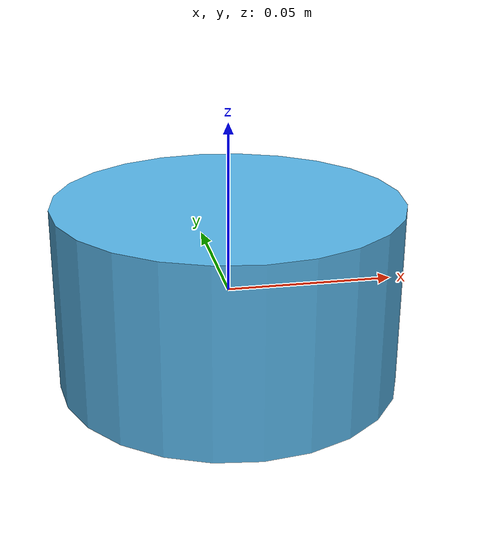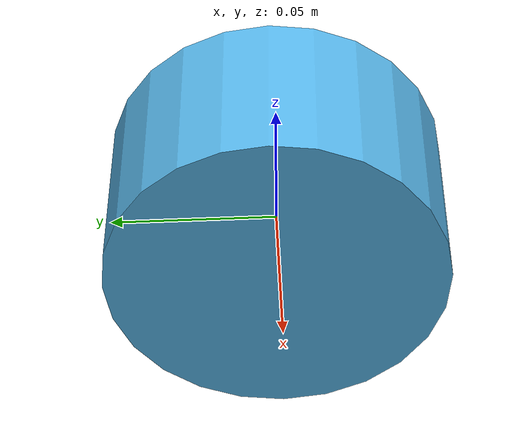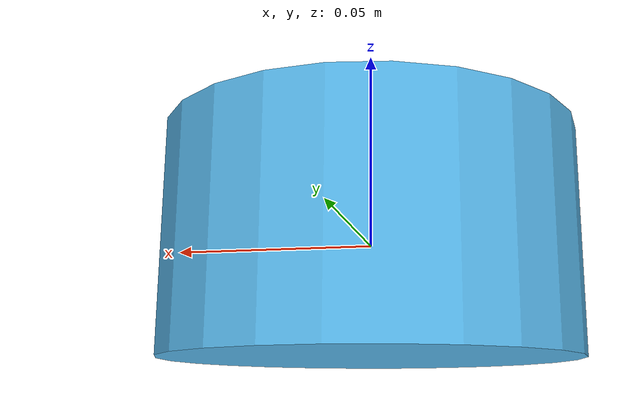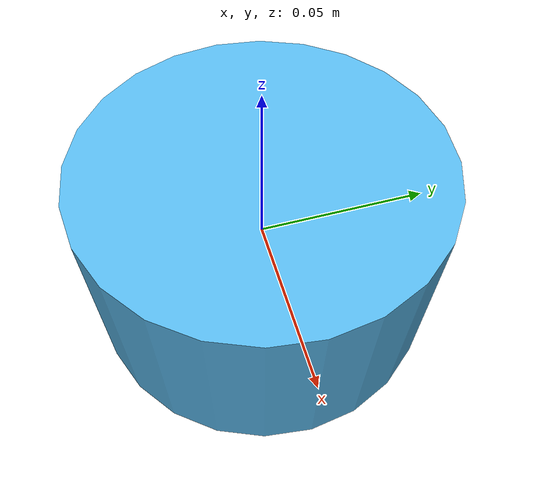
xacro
<?xml version="1.0"?>

<robot name="robot" xmlns:xacro="http://www.ros.org/wiki/xacro">
  <xacro:property name="height1" value="0.2" />
  <xacro:property name="width" value="0.2" />
 <!-- Used for fixing robot to Gazebo 'base_link' -->
  <link name="world"/>

  <joint name="fixed" type="fixed">
    <parent link="world"/>
    <child link="lidar_link"/>
  </joint>

    <link name="lidar_link">
    <inertial>
      <origin xyz="0 0 0" rpy="0 0 0"/>
      <mass value="0.125"/>
      <inertia ixx="0.001"  ixy="0"  ixz="0" iyy="0.001" iyz="0" izz="0.001" />
    </inertial>

    <collision>
      <origin xyz="0 0 0" rpy="0 0 0"/>
      <geometry>
         <cylinder radius="0.0508" length="0.055"/>
      </geometry>
    </collision>

    <visual>
      <origin xyz="0 0 0" rpy="0 0 0"/>
      <geometry>
         <cylinder radius="0.0508" length="0.055"/>
      </geometry>
    </visual>
  </link>

  </robot>
